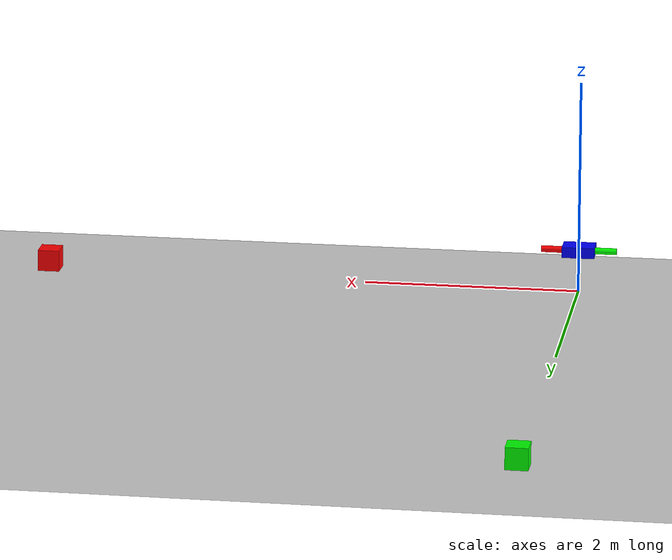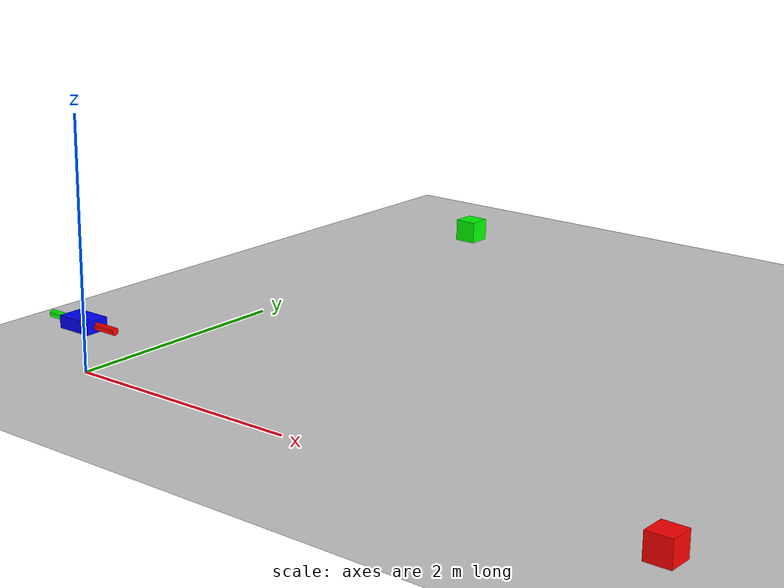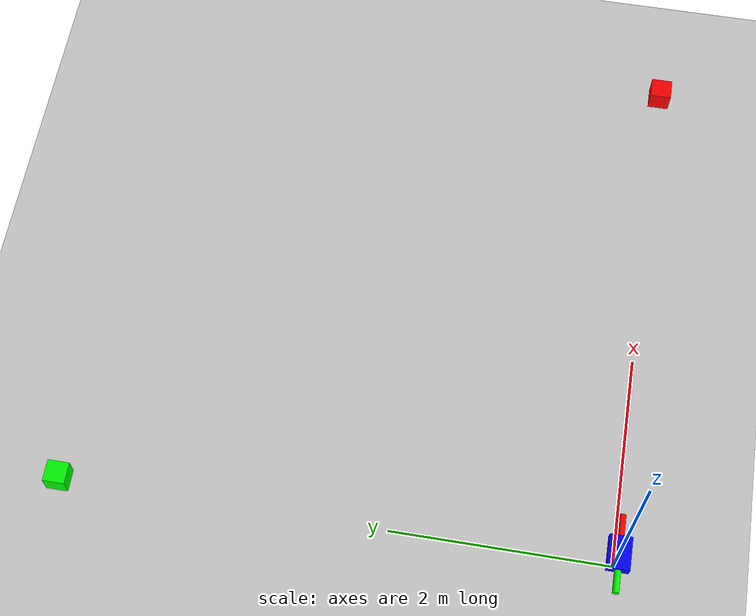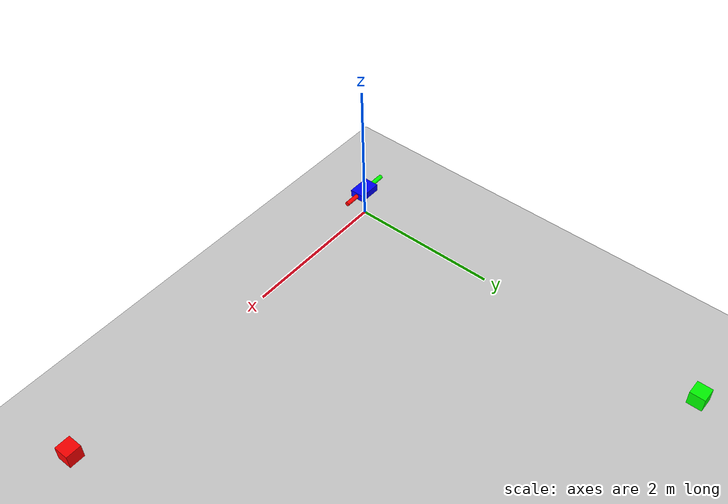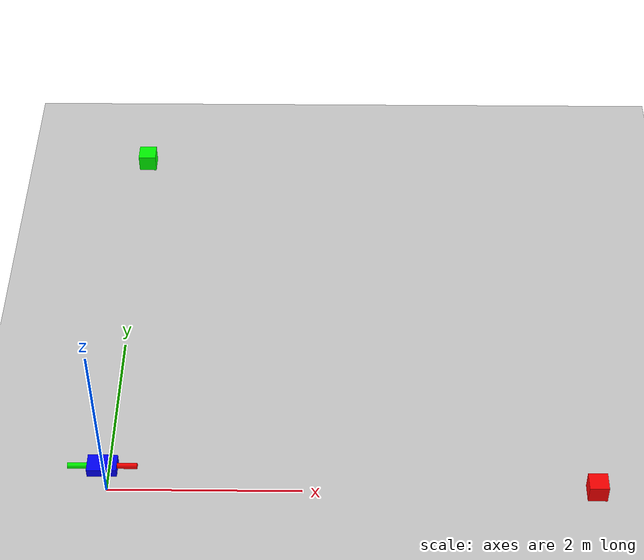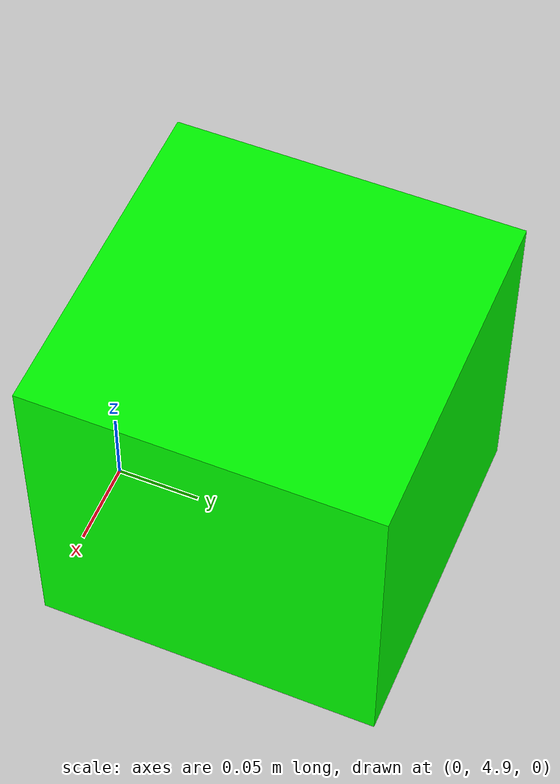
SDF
<?xml version="1.0" ?>
<sdf version="1.6">
  <world name="flat_terrain">

    <!-- Physics settings for faster simulation -->
    <physics name="1ms" type="ignore">
      <max_step_size>0.001</max_step_size>
      <real_time_factor>1.0</real_time_factor>
    </physics>

    <!-- Lighting -->
    <light type="directional" name="sun">
      <cast_shadows>true</cast_shadows>
      <pose>0 0 10 0 0 0</pose>
      <diffuse>0.8 0.8 0.8 1</diffuse>
      <specular>0.2 0.2 0.2 1</specular>
      <attenuation>
        <range>1000</range>
        <constant>0.9</constant>
        <linear>0.01</linear>
        <quadratic>0.001</quadratic>
      </attenuation>
      <direction>-0.5 0.1 -0.9</direction>
    </light>

    <!-- Ground plane -->
    <model name="ground_plane">
      <static>true</static>
      <link name="link">
        <collision name="collision">
          <geometry>
            <plane>
              <normal>0 0 1</normal>
              <size>100 100</size>
            </plane>
          </geometry>
          <surface>
            <contact>
              <collide_bitmask>65535</collide_bitmask>
              <ode>
                <mu>0.8</mu>
                <mu2>0.8</mu2>
              </ode>
            </contact>
            <friction>
              <ode>
                <mu>0.8</mu>
                <mu2>0.8</mu2>
              </ode>
            </friction>
          </surface>
        </collision>
        <visual name="visual">
          <cast_shadows>false</cast_shadows>
          <geometry>
            <plane>
              <normal>0 0 1</normal>
              <size>100 100</size>
            </plane>
          </geometry>
          <material>
            <ambient>0.5 0.5 0.5 1</ambient>
            <diffuse>0.8 0.8 0.8 1</diffuse>
            <specular>0.1 0.1 0.1 1</specular>
          </material>
        </visual>
      </link>
    </model>

    <!-- Direct world-positioned models for testing -->
    <model name="test_body">
      <static>true</static>
      <pose>0 0 0.4 0 0 0</pose>
      <link name="body_link">
        <visual name="body_visual">
          <geometry>
            <box>
              <size>0.3 0.2 0.1</size>
            </box>
          </geometry>
          <material>
            <ambient>0 0 1 1</ambient>
            <diffuse>0 0 1 1</diffuse>
          </material>
        </visual>
      </link>
    </model>

    <model name="test_red_leg">
      <static>true</static>
      <pose>0.2 0 0.4 0 1.5708 0</pose>  <!-- RIGHT side, rotated to horizontal -->
      <link name="red_link">
        <visual name="red_visual">
          <geometry>
            <cylinder>
              <radius>0.03</radius>
              <length>0.3</length>
            </cylinder>
          </geometry>
          <material>
            <ambient>1 0 0 1</ambient>
            <diffuse>1 0 0 1</diffuse>
          </material>
        </visual>
      </link>
    </model>

    <model name="test_green_leg">
      <static>true</static>
      <pose>-0.2 0 0.4 0 1.5708 0</pose>  <!-- LEFT side, rotated to horizontal -->
      <link name="green_link">
        <visual name="green_visual">
          <geometry>
            <cylinder>
              <radius>0.03</radius>
              <length>0.3</length>
            </cylinder>
          </geometry>
          <material>
            <ambient>0 1 0 1</ambient>
            <diffuse>0 1 0 1</diffuse>
          </material>
        </visual>
      </link>
    </model>

    <!-- Reference markers using simple boxes -->
    <model name="marker_x">
      <static>true</static>
      <pose>5 0 0.1 0 0 0</pose>
      <link name="link">
        <visual name="visual">
          <geometry>
            <box>
              <size>0.2 0.2 0.2</size>
            </box>
          </geometry>
          <material>
            <ambient>1 0 0 1</ambient>
            <diffuse>1 0 0 1</diffuse>
          </material>
        </visual>
        <collision name="collision">
          <geometry>
            <box>
              <size>0.2 0.2 0.2</size>
            </box>
          </geometry>
        </collision>
      </link>
    </model>

    <model name="marker_y">
      <static>true</static>
      <pose>0 5 0.1 0 0 0</pose>
      <link name="link">
        <visual name="visual">
          <geometry>
            <box>
              <size>0.2 0.2 0.2</size>
            </box>
          </geometry>
          <material>
            <ambient>0 1 0 1</ambient>
            <diffuse>0 1 0 1</diffuse>
          </material>
        </visual>
        <collision name="collision">
          <geometry>
            <box>
              <size>0.2 0.2 0.2</size>
            </box>
          </geometry>
        </collision>
      </link>
    </model>

    <!-- Camera for observation -->
    <gui fullscreen='0'>
      <camera name='user_camera'>
        <pose>-8 -8 6 0 0.4 0.8</pose>
        <view_controller>orbit</view_controller>
        <projection_type>perspective</projection_type>
      </camera>
    </gui>

  </world>
</sdf>
